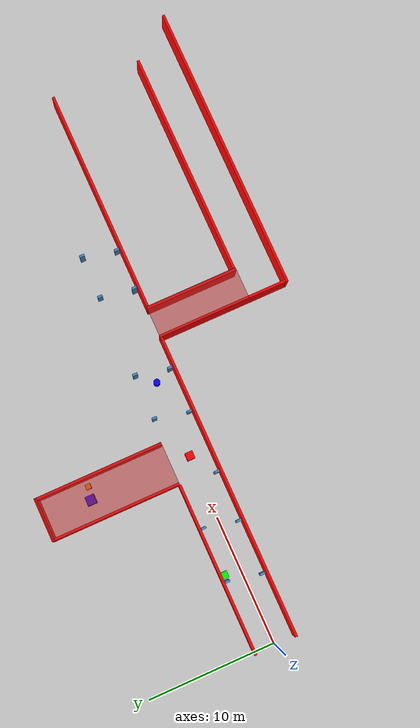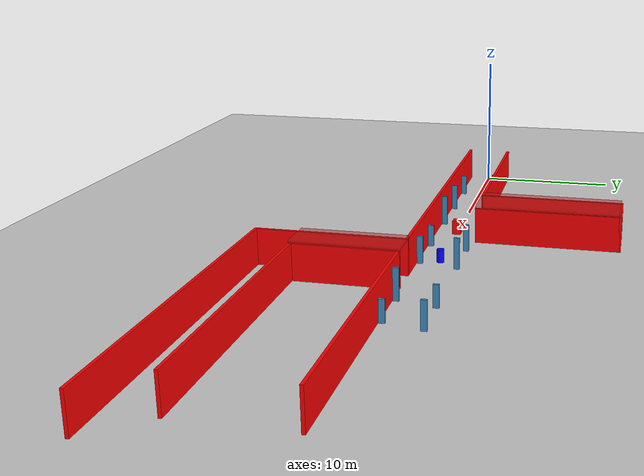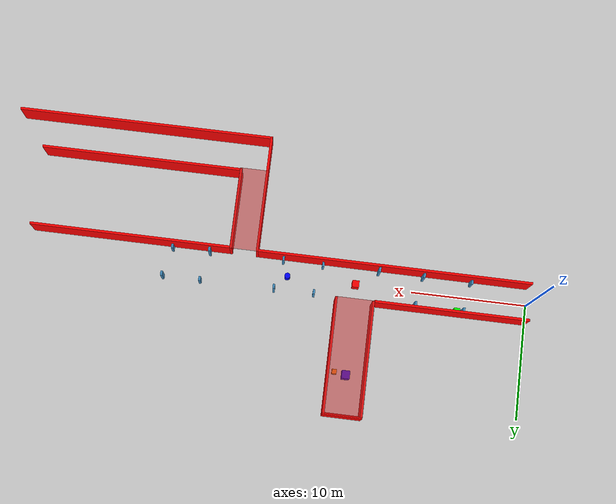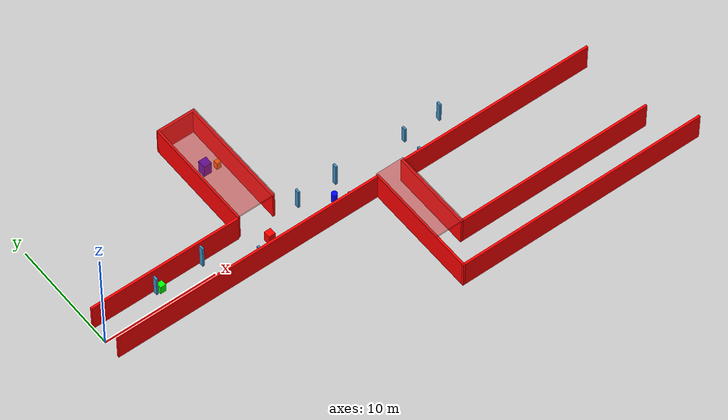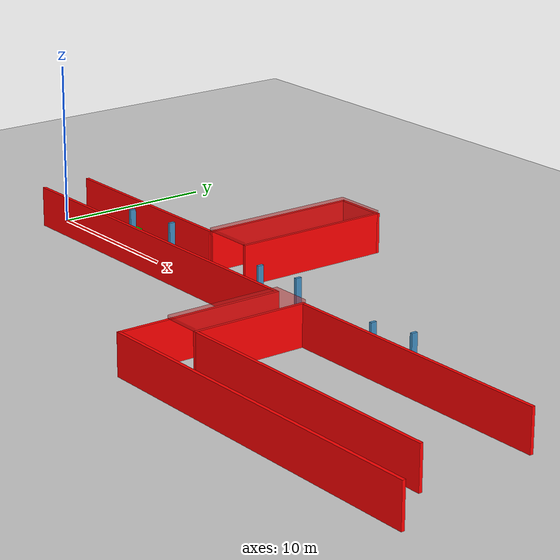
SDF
<sdf version="1.6">
 <world name="real_branch_tunnel">
  <include><uri>model://sun</uri></include>
  <include><uri>model://ground_plane</uri></include>
  <model name="main_wall_right1">
   <static>true</static>
   <pose>11.875 -1.6 1.25 0 0 0</pose>
   <link name="link">
    <collision name="collision"><geometry><box><size>23.75 0.2 2.5</size></box></geometry></collision>
    <visual name="visual">
     <geometry><box><size>23.75 0.2 2.5</size></box></geometry>
     <material>
      <ambient>1 0 0 1</ambient>
      <diffuse>1 0 0 1</diffuse>
      <specular>0.3 0.3 0.3 1</specular>
      <emissive>0.15 0 0 1</emissive>
     </material>
    </visual>
   </link>
  </model>
  <model name="main_wall_right2">
   <static>true</static>
   <pose>35 -1.6 1.25 0 0 0</pose>
   <link name="link">
    <collision name="collision"><geometry><box><size>17.5 0.2 2.5</size></box></geometry></collision>
    <visual name="visual">
     <geometry><box><size>17.5 0.2 2.5</size></box></geometry>
     <material>
      <ambient>1 0 0 1</ambient>
      <diffuse>1 0 0 1</diffuse>
      <specular>0.3 0.3 0.3 1</specular>
      <emissive>0.15 0 0 1</emissive>
     </material>
    </visual>
   </link>
  </model>
  <model name="main_wall_left1">
   <static>true</static>
   <pose>6.65 1.6 1.25 0 0 0</pose>
   <link name="link">
    <collision name="collision"><geometry><box><size>13.3 0.2 2.5</size></box></geometry></collision>
    <visual name="visual">
     <geometry><box><size>13.3 0.2 2.5</size></box></geometry>
     <material>
      <ambient>1 0 0 1</ambient>
      <diffuse>1 0 0 1</diffuse>
      <specular>0.3 0.3 0.3 1</specular>
      <emissive>0.15 0 0 1</emissive>
     </material>
    </visual>
   </link>
  </model>
  <model name="branch_wall_left">
   <static>true</static>
   <pose>13.4 6.6 1.25 0 0 0</pose>
   <link name="link">
    <collision name="collision"><geometry><box><size>0.2 10 2.5</size></box></geometry></collision>
    <visual name="visual">
     <geometry><box><size>0.2 10 2.5</size></box></geometry>
     <material>
      <ambient>1 0 0 1</ambient>
      <diffuse>1 0 0 1</diffuse>
      <specular>0.3 0.3 0.3 1</specular>
      <emissive>0.15 0 0 1</emissive>
     </material>
    </visual>
   </link>
  </model>
  <model name="branch_wall_right">
   <static>true</static>
   <pose>16.6 6.6 1.25 0 0 0</pose>
   <link name="link">
    <collision name="collision"><geometry><box><size>0.2 10 2.5</size></box></geometry></collision>
    <visual name="visual">
     <geometry><box><size>0.2 10 2.5</size></box></geometry>
     <material>
      <ambient>1 0 0 1</ambient>
      <diffuse>1 0 0 1</diffuse>
      <specular>0.3 0.3 0.3 1</specular>
      <emissive>0.15 0 0 1</emissive>
     </material>
    </visual>
   </link>
  </model>
  <model name="branch_ceiling">
   <static>true</static>
   <pose>15 6.6 2.6 0 0 0</pose>
   <link name="link">
    <collision name="collision"><geometry><box><size>3.4 10 0.2</size></box></geometry></collision>
    <visual name="visual">
     <geometry><box><size>3.4 10 0.2</size></box></geometry>
     <material>
      <script><uri>file://media/materials/scripts/gazebo.material</uri><name>Gazebo/RedTransparent</name></script>
     </material>
    </visual>
   </link>
  </model>
  <model name="branch_end_wall">
   <static>true</static>
   <pose>15 11.6 1.25 0 0 0</pose>
   <link name="link">
    <collision name="collision"><geometry><box><size>3.4 0.2 2.5</size></box></geometry></collision>
    <visual name="visual">
     <geometry><box><size>3.4 0.2 2.5</size></box></geometry>
     <material>
      <ambient>1 0 0 1</ambient>
      <diffuse>1 0 0 1</diffuse>
      <specular>0.3 0.3 0.3 1</specular>
      <emissive>0.15 0 0 1</emissive>
     </material>
    </visual>
   </link>
  </model>
  <model name="branch1_wall_left">
   <static>true</static>
   <pose>23.85 -6.7 1.25 0 0 0</pose>
   <link name="link">
    <collision name="collision"><geometry><box><size>0.2 10.4 2.5</size></box></geometry></collision>
    <visual name="visual">
     <geometry><box><size>0.2 10.4 2.5</size></box></geometry>
     <material>
      <ambient>1 0 0 1</ambient>
      <diffuse>1 0 0 1</diffuse>
      <specular>0.3 0.3 0.3 1</specular>
      <emissive>0.15 0 0 1</emissive>
     </material>
    </visual>
   </link>
  </model>
  <model name="branch1_wall_right">
   <static>true</static>
   <pose>26.15 -5.1 1.25 0 0 0</pose>
   <link name="link">
    <collision name="collision"><geometry><box><size>0.2 7.2 2.5</size></box></geometry></collision>
    <visual name="visual">
     <geometry><box><size>0.2 7.2 2.5</size></box></geometry>
     <material>
      <ambient>1 0 0 1</ambient>
      <diffuse>1 0 0 1</diffuse>
      <specular>0.3 0.3 0.3 1</specular>
      <emissive>0.15 0 0 1</emissive>
     </material>
    </visual>
   </link>
  </model>
  <model name="branch1_ceiling">
   <static>true</static>
   <pose>25 -5.1 2.6 0 0 0</pose>
   <link name="link">
    <collision name="collision"><geometry><box><size>2.5 7.2 0.2</size></box></geometry></collision>
    <visual name="visual">
     <geometry><box><size>2.5 7.2 0.2</size></box></geometry>
     <material>
      <script><uri>file://media/materials/scripts/gazebo.material</uri><name>Gazebo/RedTransparent</name></script>
     </material>
    </visual>
   </link>
  </model>
  <model name="tunnel1_wall_right">
   <static>true</static>
   <pose>35 -11.8 1.25 0 0 0</pose>
   <link name="link">
    <collision name="collision"><geometry><box><size>22.5 0.2 2.5</size></box></geometry></collision>
    <visual name="visual">
     <geometry><box><size>22.5 0.2 2.5</size></box></geometry>
     <material>
      <ambient>1 0 0 1</ambient>
      <diffuse>1 0 0 1</diffuse>
      <specular>0.3 0.3 0.3 1</specular>
      <emissive>0.15 0 0 1</emissive>
     </material>
    </visual>
   </link>
  </model>
  <model name="tunnel1_wall_left">
   <static>true</static>
   <pose>35 -8.6 1.25 0 0 0</pose>
   <link name="link">
    <collision name="collision"><geometry><box><size>17.5 0.2 2.5</size></box></geometry></collision>
    <visual name="visual">
     <geometry><box><size>17.5 0.2 2.5</size></box></geometry>
     <material>
      <ambient>1 0 0 1</ambient>
      <diffuse>1 0 0 1</diffuse>
      <specular>0.3 0.3 0.3 1</specular>
      <emissive>0.15 0 0 1</emissive>
     </material>
    </visual>
   </link>
  </model>
  <model name="obstacle_main_left_small">
   <static>true</static>
   <pose>6 1.25 0.4 0 0 0</pose>
   <link name="link">
    <collision name="collision"><geometry><box><size>0.5 0.5 0.8</size></box></geometry></collision>
    <visual name="visual">
     <geometry><box><size>0.5 0.5 0.8</size></box></geometry>
     <material><ambient>0 1 0 1</ambient><diffuse>0 1 0 1</diffuse></material>
    </visual>
   </link>
  </model>
  <model name="obstacle_main_right_cylinder">
   <static>true</static>
   <pose>21 0.0 0.45 0 0 0</pose>
   <link name="link">
    <collision name="collision">
     <geometry><cylinder><radius>0.25</radius><length>0.9</length></cylinder></geometry>
    </collision>
    <visual name="visual">
     <geometry><cylinder><radius>0.25</radius><length>0.9</length></cylinder></geometry>
     <material><ambient>0 0 1 1</ambient><diffuse>0 0 1 1</diffuse></material>
    </visual>
   </link>
  </model>
  <model name="obstacle_branch_right_small">
   <static>true</static>
   <pose>16.0 7.8 0.35 0 0 0</pose>
   <link name="link">
    <collision name="collision"><geometry><box><size>0.4 0.4 0.7</size></box></geometry></collision>
    <visual name="visual">
     <geometry><box><size>0.4 0.4 0.7</size></box></geometry>
     <material><ambient>1 0.5 0 1</ambient><diffuse>1 0.5 0 1</diffuse></material>
    </visual>
   </link>
  </model>
  <model name="obstacle_branch_1">
   <static>true</static>
   <pose>15 8 0.6 0 0 0</pose>
   <link name="link">
    <collision name="collision"><geometry><box><size>0.7 0.7 1.2</size></box></geometry></collision>
    <visual name="visual">
     <geometry><box><size>0.7 0.7 1.2</size></box></geometry>
     <material><ambient>0 0 1 1</ambient><diffuse>0 0 1 1</diffuse></material>
    </visual>
   </link>
  </model>
  <model name="dynamic_obstacle">
   <pose>15 0.0 0.5 0 0 0</pose>
   <link name="body">
    <inertial>
     <mass>1.0</mass>
     <inertia><ixx>0.1133</ixx><ixy>0</ixy><ixz>0</ixz><iyy>0.1133</iyy><iyz>0</iyz><izz>0.06</izz></inertia>
    </inertial>
    <collision name="collision"><geometry><box><size>0.6 0.6 1.0</size></box></geometry></collision>
    <visual name="visual">
     <geometry><box><size>0.6 0.6 1.0</size></box></geometry>
     <material><ambient>1 0 0 1</ambient><diffuse>1 0 0 1</diffuse></material>
    </visual>
   </link>
  </model>
  <model name="benchmark_pilaster_00">
   <static>true</static>
   <pose>5 -1.29 0.75 0 0 0</pose>
   <link name="link">
    <collision name="collision"><geometry><box><size>0.18 0.38 1.5</size></box></geometry></collision>
    <visual name="visual">
     <geometry><box><size>0.18 0.38 1.5</size></box></geometry>
     <material><ambient>0.25 0.55 0.75 1</ambient><diffuse>0.25 0.55 0.75 1</diffuse></material>
    </visual>
   </link>
  </model>
  <model name="benchmark_pilaster_01">
   <static>true</static>
   <pose>9.2 -1.29 0.95 0 0 0</pose>
   <link name="link">
    <collision name="collision"><geometry><box><size>0.18 0.38 1.9</size></box></geometry></collision>
    <visual name="visual">
     <geometry><box><size>0.18 0.38 1.9</size></box></geometry>
     <material><ambient>0.25 0.55 0.75 1</ambient><diffuse>0.25 0.55 0.75 1</diffuse></material>
    </visual>
   </link>
  </model>
  <model name="benchmark_pilaster_02">
   <static>true</static>
   <pose>13.1 -1.29 1.075 0 0 0</pose>
   <link name="link">
    <collision name="collision"><geometry><box><size>0.18 0.38 2.15</size></box></geometry></collision>
    <visual name="visual">
     <geometry><box><size>0.18 0.38 2.15</size></box></geometry>
     <material><ambient>0.25 0.55 0.75 1</ambient><diffuse>0.25 0.55 0.75 1</diffuse></material>
    </visual>
   </link>
  </model>
  <model name="benchmark_pilaster_03">
   <static>true</static>
   <pose>18 -1.29 0.75 0 0 0</pose>
   <link name="link">
    <collision name="collision"><geometry><box><size>0.18 0.38 1.5</size></box></geometry></collision>
    <visual name="visual">
     <geometry><box><size>0.18 0.38 1.5</size></box></geometry>
     <material><ambient>0.25 0.55 0.75 1</ambient><diffuse>0.25 0.55 0.75 1</diffuse></material>
    </visual>
   </link>
  </model>
  <model name="benchmark_pilaster_04">
   <static>true</static>
   <pose>21.5 -1.29 0.95 0 0 0</pose>
   <link name="link">
    <collision name="collision"><geometry><box><size>0.18 0.38 1.9</size></box></geometry></collision>
    <visual name="visual">
     <geometry><box><size>0.18 0.38 1.9</size></box></geometry>
     <material><ambient>0.25 0.55 0.75 1</ambient><diffuse>0.25 0.55 0.75 1</diffuse></material>
    </visual>
   </link>
  </model>
  <model name="benchmark_pilaster_05">
   <static>true</static>
   <pose>28 -1.29 1.075 0 0 0</pose>
   <link name="link">
    <collision name="collision"><geometry><box><size>0.18 0.38 2.15</size></box></geometry></collision>
    <visual name="visual">
     <geometry><box><size>0.18 0.38 2.15</size></box></geometry>
     <material><ambient>0.25 0.55 0.75 1</ambient><diffuse>0.25 0.55 0.75 1</diffuse></material>
    </visual>
   </link>
  </model>
  <model name="benchmark_pilaster_06">
   <static>true</static>
   <pose>31.3 -1.29 0.75 0 0 0</pose>
   <link name="link">
    <collision name="collision"><geometry><box><size>0.18 0.38 1.5</size></box></geometry></collision>
    <visual name="visual">
     <geometry><box><size>0.18 0.38 1.5</size></box></geometry>
     <material><ambient>0.25 0.55 0.75 1</ambient><diffuse>0.25 0.55 0.75 1</diffuse></material>
    </visual>
   </link>
  </model>
  <model name="benchmark_pilaster_18">
   <static>true</static>
   <pose>5.55 1.29 0.95 0 0 0</pose>
   <link name="link">
    <collision name="collision"><geometry><box><size>0.18 0.38 1.9</size></box></geometry></collision>
    <visual name="visual">
     <geometry><box><size>0.18 0.38 1.9</size></box></geometry>
     <material><ambient>0.25 0.55 0.75 1</ambient><diffuse>0.25 0.55 0.75 1</diffuse></material>
    </visual>
   </link>
  </model>
  <model name="benchmark_pilaster_19">
   <static>true</static>
   <pose>9.75 1.29 1.075 0 0 0</pose>
   <link name="link">
    <collision name="collision"><geometry><box><size>0.18 0.38 2.15</size></box></geometry></collision>
    <visual name="visual">
     <geometry><box><size>0.18 0.38 2.15</size></box></geometry>
     <material><ambient>0.25 0.55 0.75 1</ambient><diffuse>0.25 0.55 0.75 1</diffuse></material>
    </visual>
   </link>
  </model>
  <model name="benchmark_pilaster_20">
   <static>true</static>
   <pose>18.55 1.29 0.95 0 0 0</pose>
   <link name="link">
    <collision name="collision"><geometry><box><size>0.18 0.38 1.9</size></box></geometry></collision>
    <visual name="visual">
     <geometry><box><size>0.18 0.38 1.9</size></box></geometry>
     <material><ambient>0.25 0.55 0.75 1</ambient><diffuse>0.25 0.55 0.75 1</diffuse></material>
    </visual>
   </link>
  </model>
  <model name="benchmark_pilaster_21">
   <static>true</static>
   <pose>22.05 1.29 1.075 0 0 0</pose>
   <link name="link">
    <collision name="collision"><geometry><box><size>0.18 0.38 2.15</size></box></geometry></collision>
    <visual name="visual">
     <geometry><box><size>0.18 0.38 2.15</size></box></geometry>
     <material><ambient>0.25 0.55 0.75 1</ambient><diffuse>0.25 0.55 0.75 1</diffuse></material>
    </visual>
   </link>
  </model>
  <model name="benchmark_pilaster_22">
   <static>true</static>
   <pose>28.55 1.29 0.75 0 0 0</pose>
   <link name="link">
    <collision name="collision"><geometry><box><size>0.18 0.38 1.5</size></box></geometry></collision>
    <visual name="visual">
     <geometry><box><size>0.18 0.38 1.5</size></box></geometry>
     <material><ambient>0.25 0.55 0.75 1</ambient><diffuse>0.25 0.55 0.75 1</diffuse></material>
    </visual>
   </link>
  </model>
  <model name="benchmark_pilaster_23">
   <static>true</static>
   <pose>31.85 1.29 0.95 0 0 0</pose>
   <link name="link">
    <collision name="collision"><geometry><box><size>0.18 0.38 1.9</size></box></geometry></collision>
    <visual name="visual">
     <geometry><box><size>0.18 0.38 1.9</size></box></geometry>
     <material><ambient>0.25 0.55 0.75 1</ambient><diffuse>0.25 0.55 0.75 1</diffuse></material>
    </visual>
   </link>
  </model>
 </world>
</sdf>
